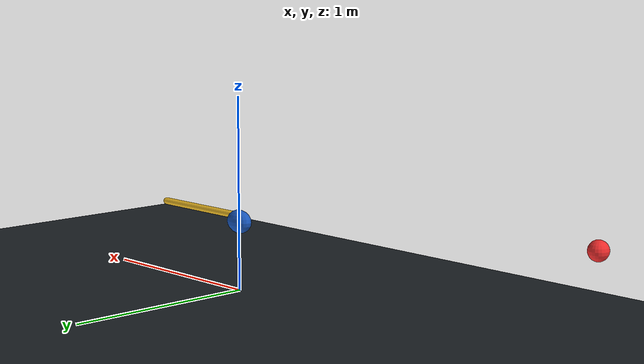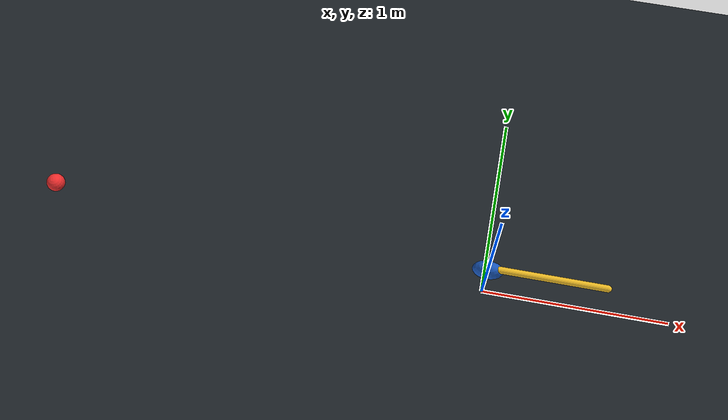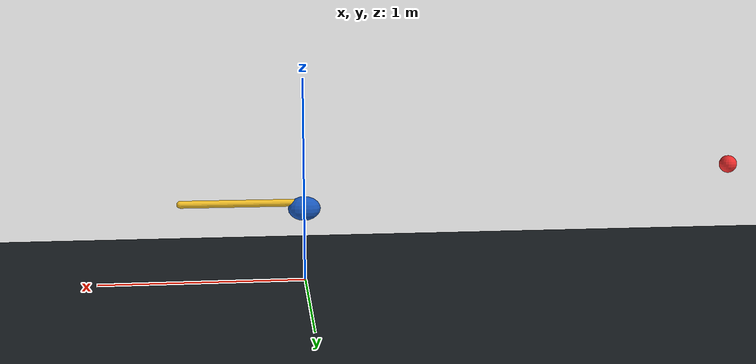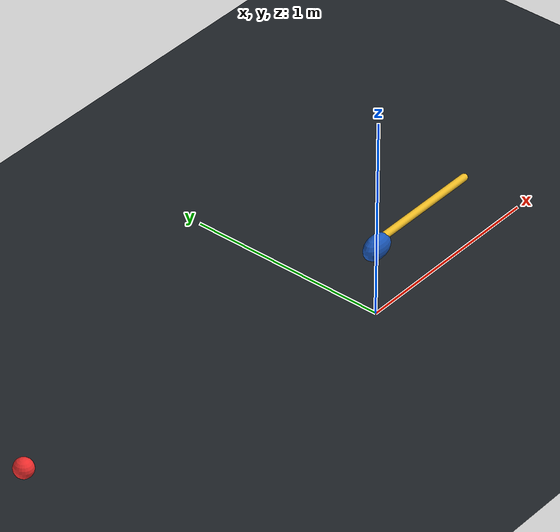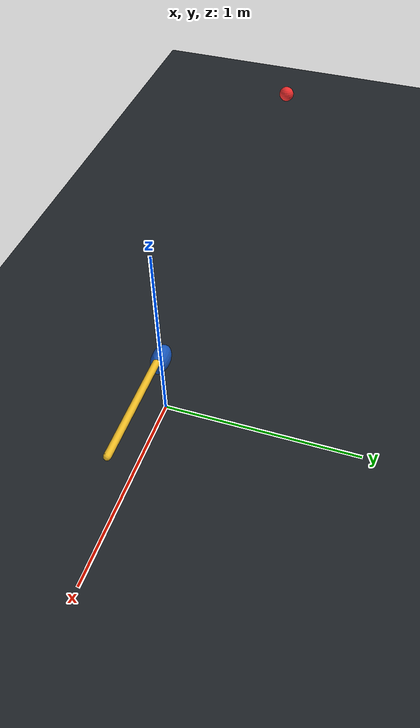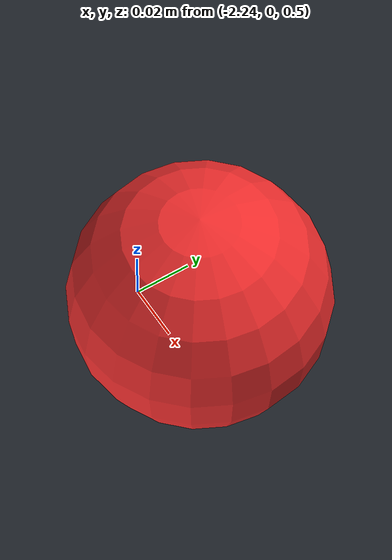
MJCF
<mujoco model="fly_ohtani">
  <compiler angle="radian" coordinate="local" inertiafromgeom="true"/>
  <option timestep="0.002" gravity="0 0 -9.81" integrator="RK4"/>

  <default>
    <geom condim="3" friction="0.8 0.02 0.001" solref="0.01 1" solimp="0.9 0.95 0.001"/>
    <joint damping="0.02" armature="0.001"/>
  </default>

  <asset>
    <material name="ground_mat" rgba="0.12 0.14 0.16 1"/>
    <material name="agent_mat" rgba="0.1 0.35 0.75 1"/>
    <material name="limb_mat" rgba="0.95 0.75 0.15 1"/>
    <material name="ball_mat" rgba="0.95 0.18 0.18 1"/>
  </asset>

  <contact>
    <exclude body1="agent_body" body2="swing_limb"/>
  </contact>

  <worldbody>
    <light name="key" pos="-2 -3 4" dir="1 1 -2" diffuse="0.9 0.9 0.9"/>
    <camera name="tracking" pos="1.3 -3.4 1.5" xyaxes="1 0 0 0 0.34 0.94"/>
    <geom name="ground" type="plane" size="4 2 0.1" material="ground_mat"/>

    <body name="agent_body" pos="0 0 0.36">
      <geom name="thorax" type="ellipsoid" size="0.08 0.045 0.06" mass="0.0009" material="agent_mat"/>
      <body name="swing_limb" pos="0.02 0 0.03">
        <joint name="swing_hinge" type="hinge" axis="0 1 0" range="-1.4 0.65" limited="true"/>
        <geom
          name="swing_limb_geom"
          type="capsule"
          fromto="0 0 0 0.58 0 0"
          size="0.018"
          mass="0.003"
          material="limb_mat"
        />
      </body>
    </body>

    <body name="ball" pos="-2.2 0 0.55">
      <joint name="ball_free" type="free" damping="0" armature="0"/>
      <geom name="ball_geom" type="sphere" size="0.045" mass="0.145" material="ball_mat"/>
    </body>
  </worldbody>

  <actuator>
    <motor name="swing_motor" joint="swing_hinge" gear="0.08" ctrllimited="true" ctrlrange="-1 1"/>
  </actuator>
</mujoco>
